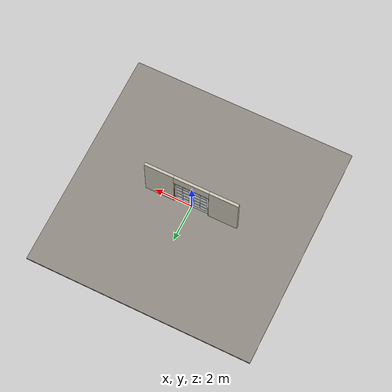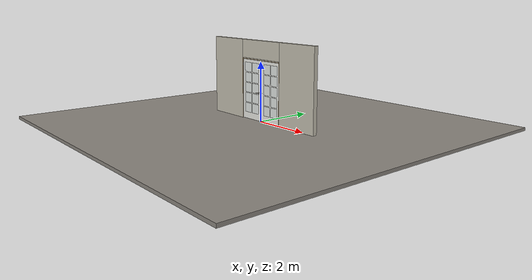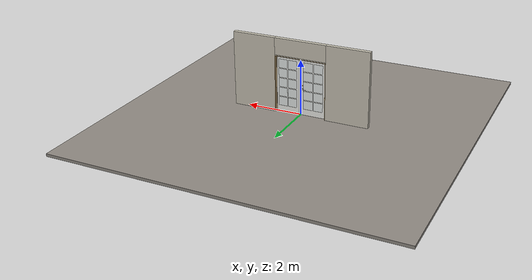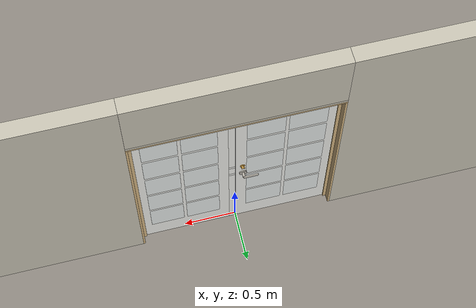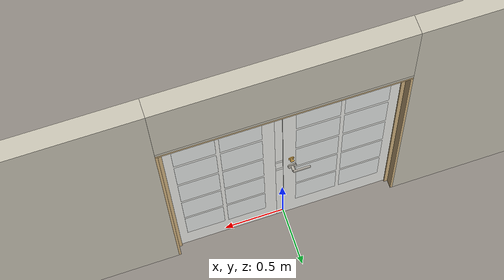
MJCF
<?xml version="1.0" ?>
<mujoco model="db0714_swing_double_full">
  <compiler angle="radian" meshdir="../../hardware" texturedir="../../textures" autolimits="true" inertiafromgeom="false"/>
  <option timestep="0.002" integrator="implicitfast" cone="elliptic" impratio="10" noslip_iterations="3">
    <flag multiccd="enable"/>
  </option>
  <size memory="16M"/>
  <default>
    <geom condim="4" solref="0.005 1" solimp="0.95 0.99 0.001"/>
    <joint solreflimit="0.005 1" solimplimit="0.95 0.99 0.001"/>
    <tendon solreflimit="0.005 1"/>
    <equality solref="0.002 1"/>
  </default>
  <visual>
    <headlight ambient="0.4 0.4 0.4" diffuse="0.7 0.7 0.7" specular="0.2 0.2 0.2"/>
    <quality shadowsize="4096"/>
    <map znear="0.01" zfar="60"/>
  </visual>
  <asset>
    <mesh name="hinge_2af0f4d6ca" file="hinge_2af0f4d6ca.obj"/>
    <mesh name="hinge_jamb_c0c0a62ada" file="hinge_jamb_c0c0a62ada.obj"/>
    <mesh name="lever_9f02b544cf" file="lever_9f02b544cf.obj"/>
    <mesh name="thumbturn_eb5c9899a3" file="thumbturn_eb5c9899a3.obj"/>
    <material name="mat_floor" rgba="0.55 0.53 0.5 1" specular="0.2" shininess="0.15" reflectance="0"/>
    <material name="mat_wall" rgba="0.78 0.76 0.7 1" specular="0.2" shininess="0.1" reflectance="0"/>
    <material name="mat_leaf_a" rgba="0.93 0.93 0.91 1" specular="0.2" shininess="0.62" reflectance="0"/>
    <material name="mat_glass" rgba="0.85 0.92 0.95 0.25" specular="0.2" shininess="0.95" reflectance="0.1"/>
    <material name="mat_hinge" rgba="0.65 0.66 0.68 1" specular="0.74" shininess="0.5" reflectance="0.36"/>
    <material name="mat_op_nickel_satin" rgba="0.72 0.7 0.66 1" specular="0.8" shininess="0.65" reflectance="0.4"/>
    <material name="mat_trim" rgba="0.85 0.66 0.3 1" specular="0.8" shininess="0.75" reflectance="0.4"/>
    <material name="mat_bolt" rgba="0.85 0.66 0.3 1" specular="0.8" shininess="0.75" reflectance="0.4"/>
    <material name="mat_deadbolt" rgba="0.85 0.66 0.3 1" specular="0.8" shininess="0.75" reflectance="0.4"/>
    <material name="mat_leaf_b" rgba="0.93 0.93 0.91 1" specular="0.2" shininess="0.62" reflectance="0"/>
    <material name="mat_frame" rgba="0.82 0.7 0.5 1" specular="0.2" shininess="0.45" reflectance="0"/>
    <texture name="skybox" type="skybox" builtin="gradient" rgb1="0.6 0.7 0.85" rgb2="0.9 0.92 0.95" width="256" height="256"/>
  </asset>
  <worldbody>
    <light name="sun" pos="1.5 -2.5 4" dir="-0.3 0.5 -0.8" directional="true" diffuse="0.8 0.8 0.8" specular="0.3 0.3 0.3" castshadow="true"/>
    <light name="fill" pos="-1.5 2.5 3" dir="0.3 -0.5 -0.7" directional="true" diffuse="0.35 0.35 0.4" castshadow="false"/>
    <camera name="robot_view" pos="0 -2.511687 1.734312" xyaxes="1 0 0 0 0.26963 0.962964" fovy="52"/>
    <camera name="far_view" pos="0 2.572687 1.734312" xyaxes="-1 0 0 0 -0.26963 0.962964" fovy="52"/>
    <camera name="iso" pos="-1.932062 -2.104938 2.141063" xyaxes="0.741536 -0.670913 0 0.242917 0.268487 0.932151" fovy="46"/>
    <camera name="detail_handle" pos="0.0085 -0.877 1.245" xyaxes="0.97561 0.219512 0 -0.070934 0.315262 0.94635" fovy="38"/>
    <geom name="floor" type="box" size="6 6 0.05" pos="0 0 -0.05" material="mat_floor" group="0" contype="1" conaffinity="1" friction="0.8 0.005 0.0001" density="2400"/>
    <geom name="wall_left" type="box" size="0.78125 0.0725 1.35" pos="-1.71875 0.0305 1.35" material="mat_wall" group="0" contype="1" conaffinity="1" friction="0.6 0.005 0.0001" density="800"/>
    <geom name="wall_right" type="box" size="0.78125 0.0725 1.35" pos="1.71875 0.0305 1.35" material="mat_wall" group="0" contype="1" conaffinity="1" friction="0.6 0.005 0.0001" density="800"/>
    <geom name="wall_header" type="box" size="0.9375 0.0725 0.303" pos="0 0.0305 2.397" material="mat_wall" group="0" contype="1" conaffinity="1" friction="0.6 0.005 0.0001" density="800"/>
    <geom name="hinge_0_jamb" type="mesh" mesh="hinge_jamb_c0c0a62ada" pos="-0.9155 -0.029 0.259" material="mat_hinge" group="1" contype="0" conaffinity="0" density="7850"/>
    <geom name="hinge_1_jamb" type="mesh" mesh="hinge_jamb_c0c0a62ada" pos="-0.9155 -0.029 1.025" material="mat_hinge" group="1" contype="0" conaffinity="0" density="7850"/>
    <geom name="hinge_2_jamb" type="mesh" mesh="hinge_jamb_c0c0a62ada" pos="-0.9155 -0.029 1.861" material="mat_hinge" group="1" contype="0" conaffinity="0" density="7850"/>
    <geom name="hinge_0_jamb_2" type="mesh" mesh="hinge_jamb_c0c0a62ada" pos="0.9155 -0.029 0.259" quat="0 0 1 0" material="mat_hinge" group="1" contype="0" conaffinity="0" density="7850"/>
    <geom name="hinge_1_jamb_2" type="mesh" mesh="hinge_jamb_c0c0a62ada" pos="0.9155 -0.029 1.025" quat="0 0 1 0" material="mat_hinge" group="1" contype="0" conaffinity="0" density="7850"/>
    <geom name="hinge_2_jamb_2" type="mesh" mesh="hinge_jamb_c0c0a62ada" pos="0.9155 -0.029 1.861" quat="0 0 1 0" material="mat_hinge" group="1" contype="0" conaffinity="0" density="7850"/>
    <geom name="jamb_l" type="box" size="0.0095 0.0725 1.0225" pos="-0.928 0.0305 1.0225" material="mat_frame" group="0" contype="1" conaffinity="1" friction="0.6 0.005 0.0001" density="300"/>
    <geom name="jamb_r" type="box" size="0.0095 0.0725 1.0225" pos="0.928 0.0305 1.0225" material="mat_frame" group="0" contype="1" conaffinity="1" friction="0.6 0.005 0.0001" density="300"/>
    <geom name="jamb_head" type="box" size="0.9375 0.0725 0.0095" pos="0 0.0305 2.0545" material="mat_frame" group="0" contype="1" conaffinity="1" friction="0.6 0.005 0.0001" density="300"/>
    <geom name="head_stud" type="box" size="0.9375 0.0725 0.015" pos="0 0.0305 2.079" material="mat_wall" group="0" contype="1" conaffinity="1" friction="0.6 0.005 0.0001" density="500"/>
    <geom name="stop_l" type="box" size="0.015 0.006 1.0225" pos="-0.9035 0.0285 1.0225" material="mat_frame" group="0" contype="1" conaffinity="1" friction="0.6 0.005 0.0001" density="300"/>
    <geom name="stop_r" type="box" size="0.015 0.006 1.0225" pos="0.9035 0.0285 1.0225" material="mat_frame" group="0" contype="1" conaffinity="1" friction="0.6 0.005 0.0001" density="300"/>
    <geom name="stop_head" type="box" size="0.9185 0.006 0.015" pos="0 0.0285 2.03" material="mat_frame" group="0" contype="1" conaffinity="1" friction="0.6 0.005 0.0001" density="300"/>
    <site name="approach_point" pos="0 -1.5 0" quat="1 0 0 0" size="0.05" rgba="0.2 0.9 0.2 0.5" group="4"/>
    <site name="goal_point" pos="0 1.5 0" quat="1 0 0 0" size="0.05" rgba="0.2 0.9 0.2 0.5" group="4"/>
    <site name="door_plane_center" pos="0 0 1.0225" quat="1 0 0 0" size="0.02" rgba="0.2 0.9 0.2 0.5" group="4"/>
    <site name="approach_point_2" pos="0 -1.5 0" quat="1 0 0 0" size="0.05" rgba="0.2 0.9 0.2 0.5" group="4"/>
    <site name="goal_point_2" pos="0 1.5 0" quat="1 0 0 0" size="0.05" rgba="0.2 0.9 0.2 0.5" group="4"/>
    <site name="door_plane_center_2" pos="0 0 1.0225" quat="1 0 0 0" size="0.02" rgba="0.2 0.9 0.2 0.5" group="4"/>
    <site name="approach_point_3" pos="0 -1.5 0" quat="1 0 0 0" size="0.05" rgba="0.2 0.9 0.2 0.5" group="4"/>
    <site name="goal_point_3" pos="0 1.5 0" quat="1 0 0 0" size="0.05" rgba="0.2 0.9 0.2 0.5" group="4"/>
    <site name="door_plane_center_3" pos="0 0 1.0225" quat="1 0 0 0" size="0.02" rgba="0.2 0.9 0.2 0.5" group="4"/>
    <body name="leaf_a" pos="-0.9185 0 0">
      <inertial pos="0.438542 -0.000772 1.026521" mass="25.726237" quat="-0.499355 0.501537 -0.498437 -0.500665" diaginertia="1.970084737 8.927352459 10.88840466"/>
      <joint name="leaf_a_hinge" type="hinge" axis="0 0 -1" pos="0.003 -0.029 0" limited="true" range="0 1.570796" solreflimit="0.02 1" damping="0.30611" frictionloss="6.834923" armature="0.02"/>
      <geom name="leaf_a_slab" type="box" size="0.457 0.022 1.016" pos="0.46 0 1.025" material="mat_leaf_a" group="0" contype="1" conaffinity="1" friction="0.4 0.005 0.0001" density="1"/>
      <geom name="leaf_a_glass_0" type="box" size="0.17073 0.0228 0.158688" pos="0.27427 0 0.391208" material="mat_glass" group="1" contype="0" conaffinity="0" density="1"/>
      <geom name="leaf_a_glass_1" type="box" size="0.17073 0.0228 0.158688" pos="0.64573 0 0.391208" material="mat_glass" group="1" contype="0" conaffinity="0" density="1"/>
      <geom name="leaf_a_glass_2" type="box" size="0.17073 0.0228 0.158688" pos="0.27427 0 0.738584" material="mat_glass" group="1" contype="0" conaffinity="0" density="1"/>
      <geom name="leaf_a_glass_3" type="box" size="0.17073 0.0228 0.158688" pos="0.64573 0 0.738584" material="mat_glass" group="1" contype="0" conaffinity="0" density="1"/>
      <geom name="leaf_a_glass_4" type="box" size="0.17073 0.0228 0.158688" pos="0.27427 0 1.08596" material="mat_glass" group="1" contype="0" conaffinity="0" density="1"/>
      <geom name="leaf_a_glass_5" type="box" size="0.17073 0.0228 0.158688" pos="0.64573 0 1.08596" material="mat_glass" group="1" contype="0" conaffinity="0" density="1"/>
      <geom name="leaf_a_glass_6" type="box" size="0.17073 0.0228 0.158688" pos="0.27427 0 1.433336" material="mat_glass" group="1" contype="0" conaffinity="0" density="1"/>
      <geom name="leaf_a_glass_7" type="box" size="0.17073 0.0228 0.158688" pos="0.64573 0 1.433336" material="mat_glass" group="1" contype="0" conaffinity="0" density="1"/>
      <geom name="leaf_a_glass_8" type="box" size="0.17073 0.0228 0.158688" pos="0.27427 0 1.780712" material="mat_glass" group="1" contype="0" conaffinity="0" density="1"/>
      <geom name="leaf_a_glass_9" type="box" size="0.17073 0.0228 0.158688" pos="0.64573 0 1.780712" material="mat_glass" group="1" contype="0" conaffinity="0" density="1"/>
      <geom name="hinge_0" type="mesh" mesh="hinge_2af0f4d6ca" pos="0.003 -0.029 0.259" material="mat_hinge" group="1" contype="0" conaffinity="0" density="7850"/>
      <geom name="hinge_1" type="mesh" mesh="hinge_2af0f4d6ca" pos="0.003 -0.029 1.025" material="mat_hinge" group="1" contype="0" conaffinity="0" density="7850"/>
      <geom name="hinge_2" type="mesh" mesh="hinge_2af0f4d6ca" pos="0.003 -0.029 1.861" material="mat_hinge" group="1" contype="0" conaffinity="0" density="7850"/>
      <geom name="leaf_a_latch_bolt_faceplate" type="box" size="0.0006 0.01235 0.0267" pos="0.9164 0 0.965" material="mat_bolt" group="1" contype="0" conaffinity="0" density="8500"/>
      <geom name="leaf_a_deadbolt_faceplate" type="box" size="0.0006 0.014 0.0245" pos="0.9164 0 1.105" material="mat_deadbolt" group="1" contype="0" conaffinity="0" density="8500"/>
      <site name="leaf_a_edge_mid" pos="0.917 0 1.016" quat="1 0 0 0" size="0.02" rgba="0.2 0.9 0.2 0.5" group="4"/>
      <body name="leaf_a_handle" pos="0.847 0 0.965">
        <inertial pos="-0.028544 0 0" mass="0.978187" quat="0 0.707107 0.707107 0" diaginertia="0.001772047 0.003604455 0.005198299"/>
        <joint name="leaf_a_handle_hinge" type="hinge" axis="0 -1 0" limited="true" range="0 0.96" damping="0.245624" frictionloss="0.048" stiffness="1.2" springref="-0.458333" armature="0.01"/>
        <geom name="leaf_a_handle_spindle" type="cylinder" size="0.006 0.03" pos="0 0 0" quat="0.707107 -0.707107 0 0" material="mat_op_nickel_satin" group="1" contype="0" conaffinity="0" density="7850"/>
        <geom name="leaf_a_handle_lever_n" type="mesh" mesh="lever_9f02b544cf" pos="0 -0.022 0" quat="0.707107 0.707107 0 0" material="mat_op_nickel_satin" group="1" contype="0" conaffinity="0" density="3000"/>
        <geom name="leaf_a_handle_lever_col_n" type="capsule" size="0.0095 0.053" pos="-0.0625 -0.077 0" quat="0.707107 0 -0.707107 0" material="mat_op_nickel_satin" group="3" contype="1" conaffinity="1" rgba="0.8 0.3 0.3 0.25" friction="0.7 0.01 0.0001" density="3000"/>
        <geom name="leaf_a_handle_hub_col_n" type="cylinder" size="0.012 0.022" pos="0 -0.052 0" quat="0.707107 -0.707107 0 0" material="mat_op_nickel_satin" group="3" contype="1" conaffinity="1" rgba="0.8 0.3 0.3 0.25" friction="0.6 0.005 0.0001" density="3000"/>
        <geom name="leaf_a_handle_lever_p" type="mesh" mesh="lever_9f02b544cf" pos="0 0.022 0" quat="-0.707107 0.707107 0 0" material="mat_op_nickel_satin" group="1" contype="0" conaffinity="0" density="3000"/>
        <geom name="leaf_a_handle_lever_col_p" type="capsule" size="0.0095 0.053" pos="-0.0625 0.077 0" quat="0.707107 0 -0.707107 0" material="mat_op_nickel_satin" group="3" contype="1" conaffinity="1" rgba="0.8 0.3 0.3 0.25" friction="0.7 0.01 0.0001" density="3000"/>
        <geom name="leaf_a_handle_hub_col_p" type="cylinder" size="0.012 0.022" pos="0 0.052 0" quat="0.707107 -0.707107 0 0" material="mat_op_nickel_satin" group="3" contype="1" conaffinity="1" rgba="0.8 0.3 0.3 0.25" friction="0.6 0.005 0.0001" density="3000"/>
        <site name="leaf_a_handle_grip_n" pos="-0.1 -0.077 0" quat="1 0 0 0" size="0.012" rgba="0.2 0.9 0.2 0.5" group="4"/>
        <site name="leaf_a_handle_grip_p" pos="-0.1 0.077 0" quat="1 0 0 0" size="0.012" rgba="0.2 0.9 0.2 0.5" group="4"/>
      </body>
      <body name="leaf_a_latch_bolt" pos="0.917 0 0.965">
        <inertial pos="-0.00865 0 0" mass="0.041419" quat="0.92388 -0.382683 0 0" diaginertia="0.000000798 0.000005598 0.000005598"/>
        <joint name="leaf_a_latch_bolt_slide" type="slide" axis="-1 0 0" limited="true" range="0 0.0127" damping="2" frictionloss="0.3" stiffness="300" springref="-0.008333" armature="0.1"/>
        <geom name="leaf_a_latch_bolt_capsule" type="capsule" size="0.00635 0.015" pos="-0.00865 0 0" quat="0.707107 0 0.707107 0" material="mat_bolt" group="0" contype="1" conaffinity="1" friction="0.2 0.005 0.0001" density="8500"/>
      </body>
      <body name="leaf_a_deadbolt" pos="0.917 0 1.105">
        <inertial pos="-0.0277 0 0" mass="0.18836" quat="0 0 0.707107 0.707107" diaginertia="0.000013829 0.000052194 0.000057986"/>
        <joint name="leaf_a_deadbolt_slide" type="slide" axis="-1 0 0" limited="true" range="0 0.0254" damping="5" frictionloss="1.5" armature="0.1" ref="0.0254"/>
        <geom name="leaf_a_deadbolt_box" type="box" size="0.0277 0.008 0.0125" pos="-0.0277 0 0" material="mat_deadbolt" group="0" contype="1" conaffinity="1" friction="0.3 0.005 0.0001" density="8500"/>
      </body>
      <body name="leaf_a_deadbolt_thumbturn" pos="0.852 0.022 1.105">
        <inertial pos="0 0.012928 0" mass="0.178946" quat="0.707107 -0.000001 -0.000001 0.707107" diaginertia="0.000026045 0.000026215 0.000032438"/>
        <joint name="leaf_a_deadbolt_thumbturn_hinge" type="hinge" axis="0 -1 0" limited="true" range="0 1.5708" damping="0.05" frictionloss="0.3" armature="0.005" ref="1.5708"/>
        <geom name="leaf_a_deadbolt_thumbturn_mesh" type="mesh" mesh="thumbturn_eb5c9899a3" pos="0 0 0" quat="-0.499999 0.499999 0.500001 0.500001" material="mat_deadbolt" group="0" contype="1" conaffinity="1" friction="0.6 0.005 0.0001" density="7100"/>
        <geom name="leaf_a_deadbolt_thumbturn_col" type="box" size="0.006 0.012 0.016" pos="0 0.02 0" quat="0.707105 0 -0.707108 0" material="mat_deadbolt" group="3" contype="1" conaffinity="1" rgba="0.8 0.3 0.3 0.25" friction="0.6 0.005 0.0001" density="7100"/>
      </body>
    </body>
    <body name="leaf_b" pos="0.9185 0 0">
      <inertial pos="-0.408895 -0.000774 1.026468" mass="25.070125" quat="0.50078 -0.498386 0.501588 0.49924" diaginertia="1.669416093 8.725857441 10.386454247"/>
      <joint name="leaf_b_hinge" type="hinge" axis="0 0 1" pos="-0.003 -0.029 0" limited="true" range="0 0.001" solreflimit="0.02 1" damping="0.30611" frictionloss="6.834923" armature="0.02"/>
      <geom name="leaf_b_edge_965_wall_n" type="box" size="0.03 0.007075 0.0167" pos="-0.887 0.014925 0.965" material="mat_leaf_b" group="0" contype="1" conaffinity="1" friction="0.6 0.005 0.0001" density="1"/>
      <geom name="leaf_b_edge_965_wall_p" type="box" size="0.03 0.008 0.0167" pos="-0.887 -0.01585 0.965" material="mat_leaf_b" group="0" contype="1" conaffinity="1" friction="0.6 0.005 0.0001" density="1"/>
      <geom name="leaf_b_edge_965_ramp" type="box" size="0.03 0.01649 0.0167" pos="-0.882861 -0.026388 0.965" quat="0.977148 0 0 0.212558" material="mat_leaf_b" group="0" contype="1" conaffinity="1" friction="0.12 0.005 0.0001" density="1"/>
      <geom name="leaf_b_edge_965_back" type="box" size="0.02165 0.00785 0.0167" pos="-0.87865 0 0.965" material="mat_leaf_b" group="0" contype="1" conaffinity="1" friction="0.6 0.005 0.0001" density="1"/>
      <geom name="leaf_b_edge_1105_wall_n" type="box" size="0.03 0.00625 0.0155" pos="-0.887 0.01575 1.105" material="mat_leaf_b" group="0" contype="1" conaffinity="1" friction="0.6 0.005 0.0001" density="1"/>
      <geom name="leaf_b_edge_1105_wall_p" type="box" size="0.03 0.00625 0.0155" pos="-0.887 -0.01575 1.105" material="mat_leaf_b" group="0" contype="1" conaffinity="1" friction="0.6 0.005 0.0001" density="1"/>
      <geom name="leaf_b_edge_1105_back" type="box" size="0.0153 0.0095 0.0155" pos="-0.8723 0 1.105" material="mat_leaf_b" group="0" contype="1" conaffinity="1" friction="0.6 0.005 0.0001" density="1"/>
      <geom name="leaf_b_edge_seg_0" type="box" size="0.03 0.022 0.46965" pos="-0.887 0 0.47865" material="mat_leaf_b" group="0" contype="1" conaffinity="1" friction="0.6 0.005 0.0001" density="1"/>
      <geom name="leaf_b_edge_seg_1" type="box" size="0.03 0.022 0.0539" pos="-0.887 0 1.0356" material="mat_leaf_b" group="0" contype="1" conaffinity="1" friction="0.6 0.005 0.0001" density="1"/>
      <geom name="leaf_b_edge_seg_2" type="box" size="0.03 0.022 0.46025" pos="-0.887 0 1.58075" material="mat_leaf_b" group="0" contype="1" conaffinity="1" friction="0.6 0.005 0.0001" density="1"/>
      <geom name="leaf_b_slab" type="box" size="0.427 0.022 1.016" pos="-0.43 0 1.025" material="mat_leaf_b" group="0" contype="1" conaffinity="1" friction="0.4 0.005 0.0001" density="1"/>
      <geom name="leaf_b_glass_0" type="box" size="0.15903 0.0228 0.158688" pos="-0.25597 0 0.391208" material="mat_glass" group="1" contype="0" conaffinity="0" density="1"/>
      <geom name="leaf_b_glass_1" type="box" size="0.15903 0.0228 0.158688" pos="-0.60403 0 0.391208" material="mat_glass" group="1" contype="0" conaffinity="0" density="1"/>
      <geom name="leaf_b_glass_2" type="box" size="0.15903 0.0228 0.158688" pos="-0.25597 0 0.738584" material="mat_glass" group="1" contype="0" conaffinity="0" density="1"/>
      <geom name="leaf_b_glass_3" type="box" size="0.15903 0.0228 0.158688" pos="-0.60403 0 0.738584" material="mat_glass" group="1" contype="0" conaffinity="0" density="1"/>
      <geom name="leaf_b_glass_4" type="box" size="0.15903 0.0228 0.158688" pos="-0.25597 0 1.08596" material="mat_glass" group="1" contype="0" conaffinity="0" density="1"/>
      <geom name="leaf_b_glass_5" type="box" size="0.15903 0.0228 0.158688" pos="-0.60403 0 1.08596" material="mat_glass" group="1" contype="0" conaffinity="0" density="1"/>
      <geom name="leaf_b_glass_6" type="box" size="0.15903 0.0228 0.158688" pos="-0.25597 0 1.433336" material="mat_glass" group="1" contype="0" conaffinity="0" density="1"/>
      <geom name="leaf_b_glass_7" type="box" size="0.15903 0.0228 0.158688" pos="-0.60403 0 1.433336" material="mat_glass" group="1" contype="0" conaffinity="0" density="1"/>
      <geom name="leaf_b_glass_8" type="box" size="0.15903 0.0228 0.158688" pos="-0.25597 0 1.780712" material="mat_glass" group="1" contype="0" conaffinity="0" density="1"/>
      <geom name="leaf_b_glass_9" type="box" size="0.15903 0.0228 0.158688" pos="-0.60403 0 1.780712" material="mat_glass" group="1" contype="0" conaffinity="0" density="1"/>
      <geom name="hinge_0_2" type="mesh" mesh="hinge_2af0f4d6ca" pos="-0.003 -0.029 0.259" quat="0 0 1 0" material="mat_hinge" group="1" contype="0" conaffinity="0" density="7850"/>
      <geom name="hinge_1_2" type="mesh" mesh="hinge_2af0f4d6ca" pos="-0.003 -0.029 1.025" quat="0 0 1 0" material="mat_hinge" group="1" contype="0" conaffinity="0" density="7850"/>
      <geom name="hinge_2_2" type="mesh" mesh="hinge_2af0f4d6ca" pos="-0.003 -0.029 1.861" quat="0 0 1 0" material="mat_hinge" group="1" contype="0" conaffinity="0" density="7850"/>
      <site name="leaf_b_edge_mid" pos="-0.917 0 1.016" quat="1 0 0 0" size="0.02" rgba="0.2 0.9 0.2 0.5" group="4"/>
    </body>
  </worldbody>
  <tendon>
    <fixed name="leaf_a_latch_bolt_coupling" limited="true" range="0 10">
      <joint joint="leaf_a_latch_bolt_slide" coef="1"/>
      <joint joint="leaf_a_handle_hinge" coef="-0.013956"/>
    </fixed>
  </tendon>
  <equality>
    <joint name="leaf_a_deadbolt_couple" joint1="leaf_a_deadbolt_slide" joint2="leaf_a_deadbolt_thumbturn_hinge" polycoef="0 0.01617 0 0 0" active="true"/>
  </equality>
  <contact>
    <exclude body1="leaf_a_deadbolt" body2="leaf_a_deadbolt_thumbturn"/>
  </contact>
  <sensor>
    <jointpos name="leaf_a_hinge_pos" joint="leaf_a_hinge"/>
    <jointvel name="leaf_a_hinge_vel" joint="leaf_a_hinge"/>
    <jointpos name="leaf_a_handle_hinge_pos" joint="leaf_a_handle_hinge"/>
    <jointvel name="leaf_a_handle_hinge_vel" joint="leaf_a_handle_hinge"/>
    <jointpos name="leaf_a_latch_bolt_slide_pos" joint="leaf_a_latch_bolt_slide"/>
    <jointvel name="leaf_a_latch_bolt_slide_vel" joint="leaf_a_latch_bolt_slide"/>
    <jointpos name="leaf_a_deadbolt_slide_pos" joint="leaf_a_deadbolt_slide"/>
    <jointvel name="leaf_a_deadbolt_slide_vel" joint="leaf_a_deadbolt_slide"/>
    <jointpos name="leaf_a_deadbolt_thumbturn_hinge_pos" joint="leaf_a_deadbolt_thumbturn_hinge"/>
    <jointvel name="leaf_a_deadbolt_thumbturn_hinge_vel" joint="leaf_a_deadbolt_thumbturn_hinge"/>
    <jointpos name="leaf_b_hinge_pos" joint="leaf_b_hinge"/>
    <jointvel name="leaf_b_hinge_vel" joint="leaf_b_hinge"/>
  </sensor>
</mujoco>
